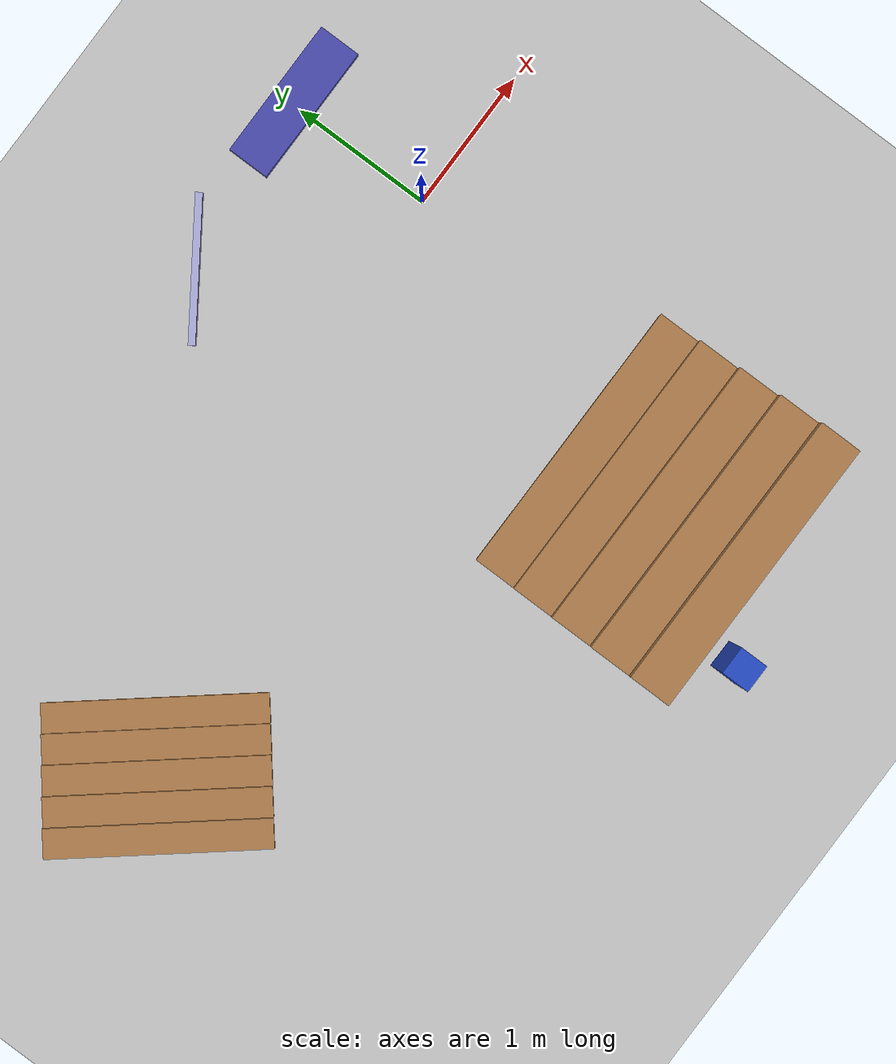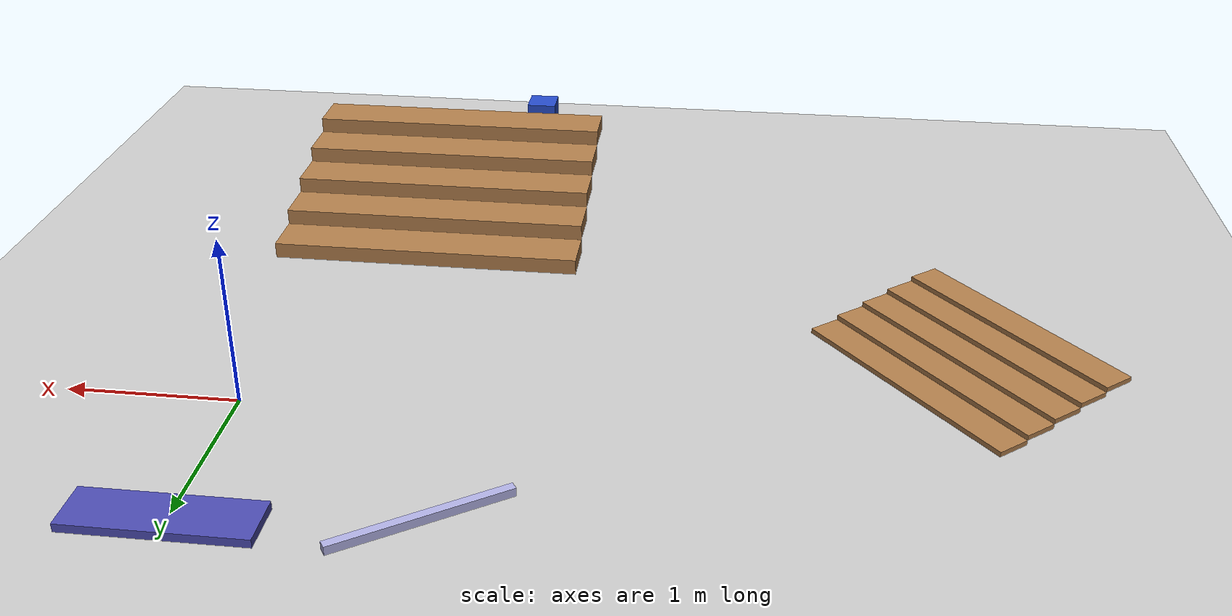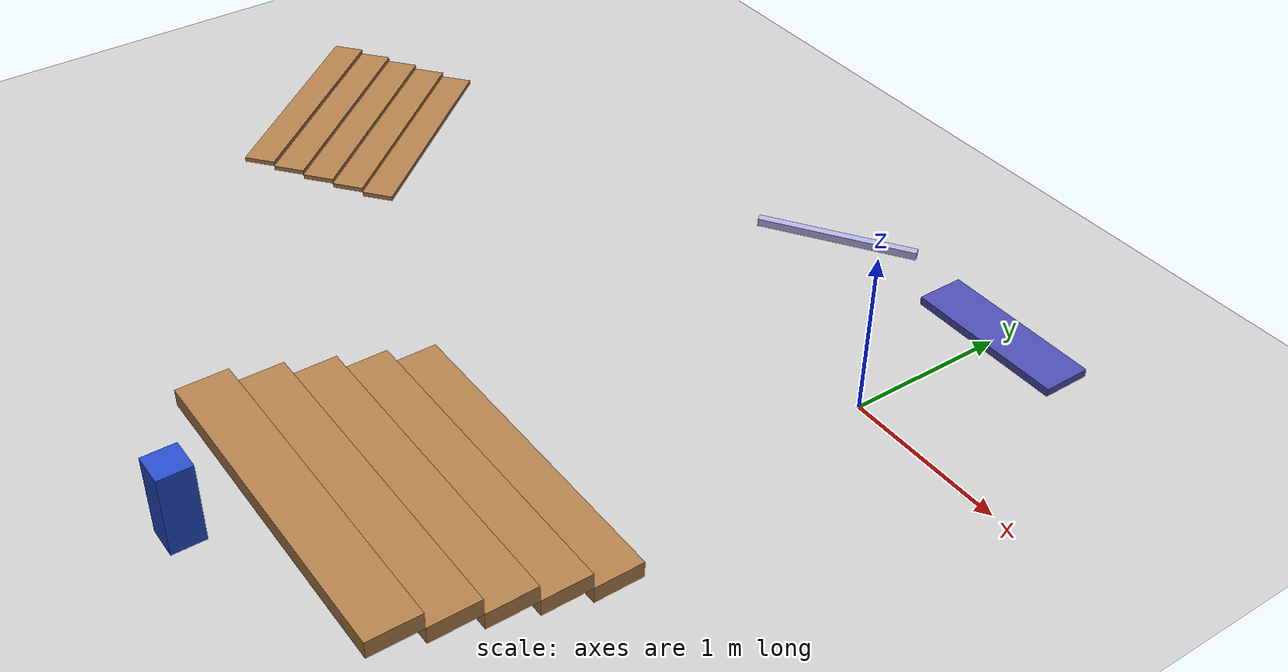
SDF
<sdf version="1.7">
 <world name="default">
  <light name="sun" type="directional">
   <pose>0 0 10 0 -0 0</pose>
   <diffuse>0.8 0.8 0.8 1</diffuse>
   <specular>0.2 0.2 0.2 1</specular>
   <attenuation>
    <range>1000</range>
    <constant>0.9</constant>
    <linear>0.01</linear>
    <quadratic>0.001</quadratic>
   </attenuation>
   <direction>-0.5 0.1 -0.9</direction>
   <spot><inner_angle>0</inner_angle><outer_angle>0</outer_angle><falloff>0</falloff></spot>
  </light>
  <model name="ground_plane">
   <static>1</static>
   <link name="link">
    <collision name="collision">
     <geometry><plane><normal>0 0 1</normal><size>100 100</size></plane></geometry>
     <surface>
      <contact><collide_bitmask>65535</collide_bitmask></contact>
      <friction><ode><mu>100</mu><mu2>50</mu2></ode></friction>
     </surface>
    </collision>
    <visual name="visual">
     <cast_shadows>0</cast_shadows>
     <geometry><plane><normal>0 0 1</normal><size>100 100</size></plane></geometry>
     <material>
      <script><uri>file://media/materials/scripts/gazebo.material</uri><name>Gazebo/Grey</name></script>
     </material>
    </visual>
   </link>
  </model>
  <gravity>0 0 -9.8</gravity>
  <magnetic_field>6e-06 2.3e-05 -4.2e-05</magnetic_field>
  <atmosphere type="adiabatic"/>
  <physics type="ode">
   <max_step_size>0.001</max_step_size>
   <real_time_factor>1</real_time_factor>
   <real_time_update_rate>1000</real_time_update_rate>
  </physics>
  <scene><ambient>0.4 0.4 0.4 1</ambient><background>0.7 0.7 0.7 1</background><shadows>1</shadows></scene>
  <spherical_coordinates>
   <surface_model>EARTH_WGS84</surface_model>
   <latitude_deg>0</latitude_deg>
   <longitude_deg>0</longitude_deg>
   <elevation>0</elevation>
   <heading_deg>0</heading_deg>
  </spherical_coordinates>
  <model name="block_h0.05">
   <link name="link">
    <inertial>
     <mass>1</mass>
     <inertia>
      <ixx>0.166667</ixx>
      <ixy>0</ixy>
      <ixz>0</ixz>
      <iyy>0.166667</iyy>
      <iyz>0</iyz>
      <izz>0.166667</izz>
     </inertia>
    </inertial>
    <visual name="visual">
     <geometry><box><size>1 0.3 0.05</size></box></geometry>
     <material>
      <script><name>Gazebo/Grey</name><uri>file://media/materials/scripts/gazebo.material</uri></script>
      <shader type="pixel"><normal_map>__default__</normal_map></shader>
      <ambient>0.3 0.3 0.7 1</ambient>
      <diffuse>0.7 0.7 0.7 1</diffuse>
      <specular>0.01 0.01 0.01 1</specular>
      <emissive>0 0 0 1</emissive>
     </material>
    </visual>
    <collision name="collision">
     <geometry><box><size>1 0.3 0.05</size></box></geometry>
     <surface>
      <friction>
       <ode><mu>1</mu><mu2>1</mu2><fdir1>0 0 0</fdir1><slip1>0</slip1><slip2>0</slip2></ode>
       <torsional>
        <coefficient>1</coefficient>
        <patch_radius>0</patch_radius>
        <surface_radius>0</surface_radius>
        <use_patch_radius>1</use_patch_radius>
        <ode><slip>0</slip></ode>
       </torsional>
      </friction>
      <bounce><restitution_coefficient>0</restitution_coefficient><threshold>1e+06</threshold></bounce>
      <contact>
       <collide_without_contact>0</collide_without_contact>
       <collide_without_contact_bitmask>1</collide_without_contact_bitmask>
       <collide_bitmask>1</collide_bitmask>
       <ode>
        <soft_cfm>0</soft_cfm>
        <soft_erp>0.2</soft_erp>
        <kp>1e+13</kp>
        <kd>1</kd>
        <max_vel>0.01</max_vel>
        <min_depth>0</min_depth>
       </ode>
       <bullet>
        <split_impulse>1</split_impulse>
        <split_impulse_penetration_threshold>-0.01</split_impulse_penetration_threshold>
        <soft_cfm>0</soft_cfm>
        <soft_erp>0.2</soft_erp>
        <kp>1e+13</kp>
        <kd>1</kd>
       </bullet>
      </contact>
     </surface>
    </collision>
   </link>
   <static>1</static>
   <pose>0.013429 1.05664 0.022806 0 -0 0</pose>
  </model>
  <model name="piple_0.05">
   <link name="link">
    <inertial>
     <mass>1</mass>
     <inertia>
      <ixx>0.166667</ixx>
      <ixy>0</ixy>
      <ixz>0</ixz>
      <iyy>0.166667</iyy>
      <iyz>0</iyz>
      <izz>0.166667</izz>
     </inertia>
    </inertial>
    <pose>0 0 0.05 0 -0 0</pose>
    <visual name="visual">
     <geometry><box><size>1 0.05 0.05</size></box></geometry>
     <material>
      <script><name>Gazebo/Grey</name><uri>file://media/materials/scripts/gazebo.material</uri></script>
      <shader type="pixel"><normal_map>__default__</normal_map></shader>
      <ambient>0.3 0.3 0.9 1</ambient>
      <diffuse>0.7 0.7 0.9 1</diffuse>
      <specular>0.01 0.01 0.01 1</specular>
      <emissive>0 0 0 1</emissive>
     </material>
    </visual>
    <collision name="collision">
     <geometry><box><size>1 0.05 0.05</size></box></geometry>
     <surface>
      <friction>
       <ode><mu>1</mu><mu2>1</mu2><fdir1>0 0 0</fdir1><slip1>0</slip1><slip2>0</slip2></ode>
       <torsional>
        <coefficient>1</coefficient>
        <patch_radius>0</patch_radius>
        <surface_radius>0</surface_radius>
        <use_patch_radius>1</use_patch_radius>
        <ode><slip>0</slip></ode>
       </torsional>
      </friction>
      <bounce><restitution_coefficient>0</restitution_coefficient><threshold>1e+06</threshold></bounce>
      <contact>
       <collide_without_contact>0</collide_without_contact>
       <collide_without_contact_bitmask>1</collide_without_contact_bitmask>
       <collide_bitmask>1</collide_bitmask>
       <ode>
        <soft_cfm>0</soft_cfm>
        <soft_erp>0.2</soft_erp>
        <kp>1e+13</kp>
        <kd>1</kd>
        <max_vel>0.01</max_vel>
        <min_depth>0</min_depth>
       </ode>
       <bullet>
        <split_impulse>1</split_impulse>
        <split_impulse_penetration_threshold>-0.01</split_impulse_penetration_threshold>
        <soft_cfm>0</soft_cfm>
        <soft_erp>0.2</soft_erp>
        <kp>1e+13</kp>
        <kd>1</kd>
       </bullet>
      </contact>
     </surface>
    </collision>
   </link>
   <static>1</static>
   <pose>-1.24232 0.917305 -0.025554 0 -0 0.596594</pose>
  </model>
  <model name="stair_h0.1">
   <pose>-0.659716 -2.43729 0 0 -0 0</pose>
   <link name="Stairs_14">
    <visual name="Stairs_14_Visual_0">
     <pose>0 0.6 0.05 0 -0 0</pose>
     <geometry><box><size>2 0.3 0.1</size></box></geometry>
     <material>
      <script><uri>file://media/materials/scripts/gazebo.material</uri><name>Gazebo/Wood</name></script>
      <ambient>1 1 1 1</ambient>
     </material>
     <meta><layer>0</layer></meta>
    </visual>
    <collision name="Stairs_14_Collision_0">
     <geometry><box><size>2 0.3 0.1</size></box></geometry>
     <pose>0 0.6 0.05 0 -0 0</pose>
    </collision>
    <visual name="Stairs_14_Visual_1">
     <pose>0 0.3 0.15 0 -0 0</pose>
     <geometry><box><size>2 0.3 0.1</size></box></geometry>
     <material>
      <script><uri>file://media/materials/scripts/gazebo.material</uri><name>Gazebo/Wood</name></script>
      <ambient>1 1 1 1</ambient>
     </material>
     <meta><layer>0</layer></meta>
    </visual>
    <collision name="Stairs_14_Collision_1">
     <geometry><box><size>2 0.3 0.1</size></box></geometry>
     <pose>0 0.3 0.15 0 -0 0</pose>
    </collision>
    <visual name="Stairs_14_Visual_2">
     <pose>0 0 0.25 0 -0 0</pose>
     <geometry><box><size>2 0.3 0.1</size></box></geometry>
     <material>
      <script><uri>file://media/materials/scripts/gazebo.material</uri><name>Gazebo/Wood</name></script>
      <ambient>1 1 1 1</ambient>
     </material>
     <meta><layer>0</layer></meta>
    </visual>
    <collision name="Stairs_14_Collision_2">
     <geometry><box><size>2 0.3 0.1</size></box></geometry>
     <pose>0 0 0.25 0 -0 0</pose>
    </collision>
    <visual name="Stairs_14_Visual_3">
     <pose>0 -0.3 0.35 0 -0 0</pose>
     <geometry><box><size>2 0.3 0.1</size></box></geometry>
     <material>
      <script><uri>file://media/materials/scripts/gazebo.material</uri><name>Gazebo/Wood</name></script>
      <ambient>1 1 1 1</ambient>
     </material>
     <meta><layer>0</layer></meta>
    </visual>
    <collision name="Stairs_14_Collision_3">
     <geometry><box><size>2 0.3 0.1</size></box></geometry>
     <pose>0 -0.3 0.35 0 -0 0</pose>
    </collision>
    <visual name="Stairs_14_Visual_4">
     <pose>0 -0.6 0.45 0 -0 0</pose>
     <geometry><box><size>2 0.3 0.1</size></box></geometry>
     <material>
      <script><uri>file://media/materials/scripts/gazebo.material</uri><name>Gazebo/Wood</name></script>
      <ambient>1 1 1 1</ambient>
     </material>
     <meta><layer>0</layer></meta>
    </visual>
    <collision name="Stairs_14_Collision_4">
     <geometry><box><size>2 0.3 0.1</size></box></geometry>
     <pose>0 -0.6 0.45 0 -0 0</pose>
    </collision>
   </link>
   <static>1</static>
  </model>
  <model name="stair_5_h15">
   <pose>-4.02699 -0.869716 0 0 0 -0.880095</pose>
   <link name="Stairs_8">
    <visual name="Stairs_8_Visual_0">
     <pose>0 0.4 0.015 0 -0 0</pose>
     <geometry><box><size>1.5 0.2 0.03</size></box></geometry>
     <material>
      <script><uri>file://media/materials/scripts/gazebo.material</uri><name>Gazebo/Wood</name></script>
      <ambient>0.996078 0.47451 0.0196078 1</ambient>
     </material>
     <meta><layer>0</layer></meta>
    </visual>
    <collision name="Stairs_8_Collision_0">
     <geometry><box><size>1.5 0.2 0.03</size></box></geometry>
     <pose>0 0.4 0.015 0 -0 0</pose>
    </collision>
    <visual name="Stairs_8_Visual_1">
     <pose>0 0.2 0.045 0 -0 0</pose>
     <geometry><box><size>1.5 0.2 0.03</size></box></geometry>
     <material>
      <script><uri>file://media/materials/scripts/gazebo.material</uri><name>Gazebo/Wood</name></script>
      <ambient>0.996078 0.47451 0.0196078 1</ambient>
     </material>
     <meta><layer>0</layer></meta>
    </visual>
    <collision name="Stairs_8_Collision_1">
     <geometry><box><size>1.5 0.2 0.03</size></box></geometry>
     <pose>0 0.2 0.045 0 -0 0</pose>
    </collision>
    <visual name="Stairs_8_Visual_2">
     <pose>0 0 0.075 0 -0 0</pose>
     <geometry><box><size>1.5 0.2 0.03</size></box></geometry>
     <material>
      <script><uri>file://media/materials/scripts/gazebo.material</uri><name>Gazebo/Wood</name></script>
      <ambient>0.996078 0.47451 0.0196078 1</ambient>
     </material>
     <meta><layer>0</layer></meta>
    </visual>
    <collision name="Stairs_8_Collision_2">
     <geometry><box><size>1.5 0.2 0.03</size></box></geometry>
     <pose>0 0 0.075 0 -0 0</pose>
    </collision>
    <visual name="Stairs_8_Visual_3">
     <pose>0 -0.2 0.105 0 -0 0</pose>
     <geometry><box><size>1.5 0.2 0.03</size></box></geometry>
     <material>
      <script><uri>file://media/materials/scripts/gazebo.material</uri><name>Gazebo/Wood</name></script>
      <ambient>0.996078 0.47451 0.0196078 1</ambient>
     </material>
     <meta><layer>0</layer></meta>
    </visual>
    <collision name="Stairs_8_Collision_3">
     <geometry><box><size>1.5 0.2 0.03</size></box></geometry>
     <pose>0 -0.2 0.105 0 -0 0</pose>
    </collision>
    <visual name="Stairs_8_Visual_4">
     <pose>0 -0.4 0.135 0 -0 0</pose>
     <geometry><box><size>1.5 0.2 0.03</size></box></geometry>
     <material>
      <script><uri>file://media/materials/scripts/gazebo.material</uri><name>Gazebo/Wood</name></script>
      <ambient>0.996078 0.47451 0.0196078 1</ambient>
     </material>
     <meta><layer>0</layer></meta>
    </visual>
    <collision name="Stairs_8_Collision_4">
     <geometry><box><size>1.5 0.2 0.03</size></box></geometry>
     <pose>0 -0.4 0.135 0 -0 0</pose>
    </collision>
   </link>
   <static>1</static>
  </model>
  <model name="block_0.5">
   <link name="link_1">
    <inertial>
     <mass>1.79769e+308</mass>
     <inertia>
      <ixx>1.79769e+308</ixx>
      <ixy>0</ixy>
      <ixz>0</ixz>
      <iyy>1.79769e+308</iyy>
      <iyz>0</iyz>
      <izz>1.79769e+308</izz>
     </inertia>
    </inertial>
    <pose>0 0 0.25 0 -0 0</pose>
    <kinematic>1</kinematic>
    <visual name="visual">
     <geometry><box><size>0.2 0.2 0.5</size></box></geometry>
     <material>
      <lighting>1</lighting>
      <script><uri>file://media/materials/scripts/gazebo.material</uri><name>Gazebo/Blue</name></script>
      <shader type="pixel"><normal_map>__default__</normal_map></shader>
      <ambient>0.5 0.3 0 1</ambient>
      <diffuse>0.7 0.7 0.8 1</diffuse>
      <specular>0.01 0.01 0.01 1</specular>
      <emissive>0.5 0 0 1</emissive>
     </material>
    </visual>
    <collision name="collision_9">
     <geometry><box><size>0.2 0.2 0.5</size></box></geometry>
     <surface>
      <friction>
       <ode><mu>1</mu><mu2>1</mu2><fdir1>0 0 0</fdir1><slip1>0</slip1><slip2>0</slip2></ode>
       <torsional>
        <coefficient>1</coefficient>
        <patch_radius>0</patch_radius>
        <surface_radius>0</surface_radius>
        <use_patch_radius>1</use_patch_radius>
        <ode><slip>0</slip></ode>
       </torsional>
      </friction>
      <bounce><restitution_coefficient>0</restitution_coefficient><threshold>1e+06</threshold></bounce>
      <contact>
       <collide_without_contact>0</collide_without_contact>
       <collide_without_contact_bitmask>1</collide_without_contact_bitmask>
       <collide_bitmask>1</collide_bitmask>
       <ode>
        <soft_cfm>0</soft_cfm>
        <soft_erp>0.2</soft_erp>
        <kp>1e+13</kp>
        <kd>1</kd>
        <max_vel>0.01</max_vel>
        <min_depth>0</min_depth>
       </ode>
       <bullet>
        <split_impulse>1</split_impulse>
        <split_impulse_penetration_threshold>-0.01</split_impulse_penetration_threshold>
        <soft_cfm>0</soft_cfm>
        <soft_erp>0.2</soft_erp>
        <kp>1e+13</kp>
        <kd>1</kd>
       </bullet>
      </contact>
     </surface>
    </collision>
   </link>
   <static>1</static>
   <pose>-1.19093 -3.43173 0 0 -0 0</pose>
  </model>
 </world>
</sdf>
